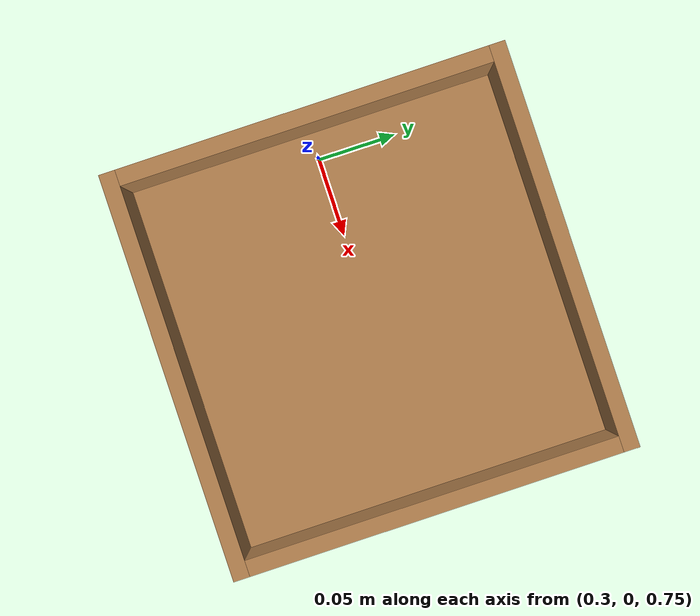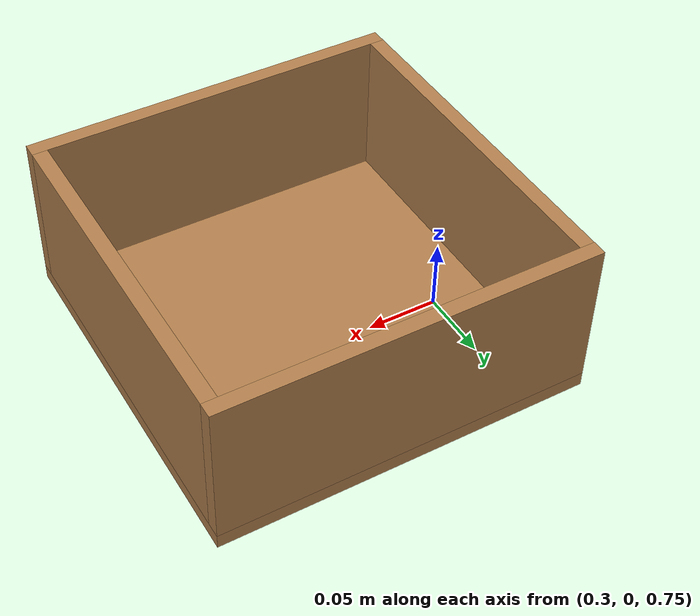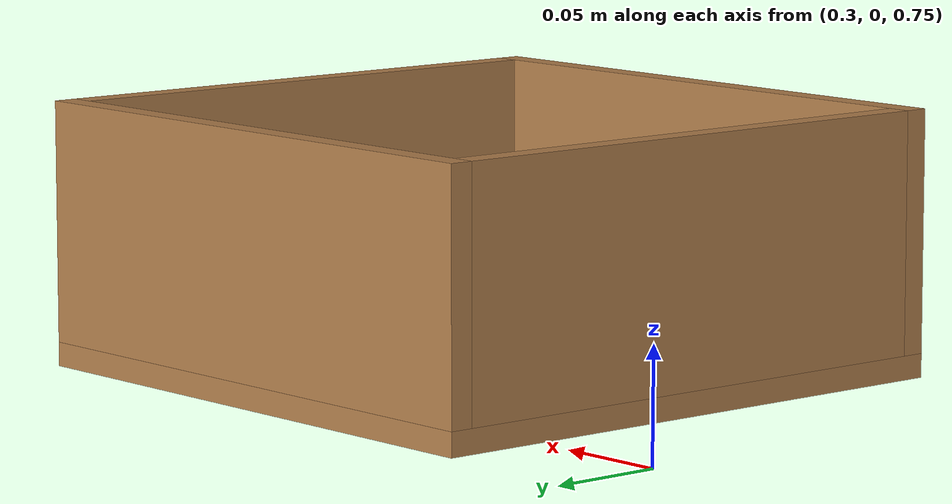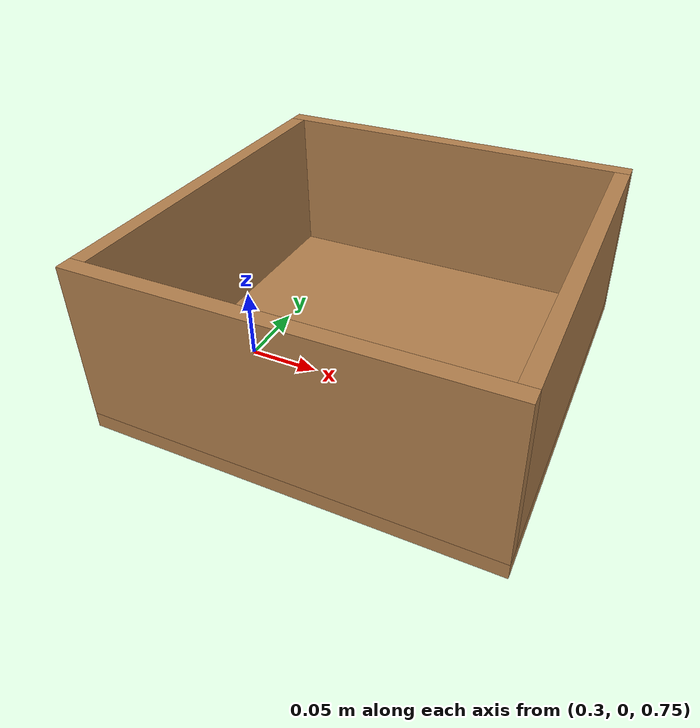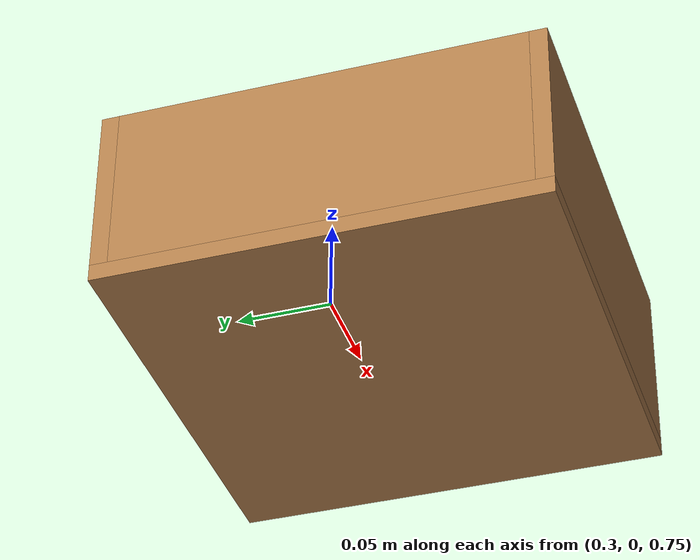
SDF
<?xml version='1.0'?>
<sdf version='1.6'>
	<model name='box_grains'>
	<pose>0.4 0 0.775 0 0 0 </pose>
	<static>true</static>

	<link name='box_grains_0'>
		<pose>0 0 0.005 0 0 0 </pose>
		<collision name='box_grains_0_coliision'>
		<geometry>
			<box>
				<size>0.25 0.25 0.01</size>
			</box>
		</geometry>
		<surface>
			<friction>
				<ode>
					<mu>2000</mu>
					<mu2>2000</mu2>
				</ode>
			</friction>
		</surface>
		</collision>

		<visual name='box_grains_0_visual'>
		<geometry>
			<box>
				<size>0.25 0.25 0.01</size>
			</box>
		</geometry>
		<material>
			<script>
				<uri>file://media/materials/scripts/gazebo.material</uri>
				<name>Gazebo/WoodFloor</name>
			</script>
		</material>
		</visual>	</link>

	<link name='box_grains_1'>
		<pose>-0.12 0 0.06 0 0 0 </pose>
		<collision name='box_grains_1_coliision'>
		<geometry>
			<box>
				<size>0.01 0.23 0.1</size>
			</box>
		</geometry>
		<surface>
			<friction>
				<ode>
					<mu>2000</mu>
					<mu2>2000</mu2>
				</ode>
			</friction>
		</surface>
		</collision>

		<visual name='box_grains_1_visual'>
		<geometry>
			<box>
				<size>0.01 0.23 0.1</size>
			</box>
		</geometry>
		<material>
			<script>
				<uri>file://media/materials/scripts/gazebo.material</uri>
				<name>Gazebo/WoodFloor</name>
			</script>
		</material>
		</visual>	</link>

	<link name='box_grains_2'>
		<pose>0.12 0 0.06 0 0 0 </pose>
		<collision name='box_grains_2_coliision'>
		<geometry>
			<box>
				<size>0.01 0.23 0.1</size>
			</box>
		</geometry>
		<surface>
			<friction>
				<ode>
					<mu>2000</mu>
					<mu2>2000</mu2>
				</ode>
			</friction>
		</surface>
		</collision>

		<visual name='box_grains_2_visual'>
		<geometry>
			<box>
				<size>0.01 0.23 0.1</size>
			</box>
		</geometry>
		<material>
			<script>
				<uri>file://media/materials/scripts/gazebo.material</uri>
				<name>Gazebo/WoodFloor</name>
			</script>
		</material>
		</visual>	</link>

	<link name='box_grains_3'>
		<pose>0 -0.12 0.06 0 0 0 </pose>
		<collision name='box_grains_3_coliision'>
		<geometry>
			<box>
				<size>0.25 0.01 0.1</size>
			</box>
		</geometry>
		<surface>
			<friction>
				<ode>
					<mu>2000</mu>
					<mu2>2000</mu2>
				</ode>
			</friction>
		</surface>
		</collision>

		<visual name='box_grains_3_visual'>
		<geometry>
			<box>
				<size>0.25 0.01 0.1</size>
			</box>
		</geometry>
		<material>
			<script>
				<uri>file://media/materials/scripts/gazebo.material</uri>
				<name>Gazebo/WoodFloor</name>
			</script>
		</material>
		</visual>	</link>

	<link name='box_grains_4'>
		<pose>0 0.12 0.06 0 0 0 </pose>
		<collision name='box_grains_4_coliision'>
		<geometry>
			<box>
				<size>0.25 0.01 0.1</size>
			</box>
		</geometry>
		<surface>
			<friction>
				<ode>
					<mu>2000</mu>
					<mu2>2000</mu2>
				</ode>
			</friction>
		</surface>
		</collision>

		<visual name='box_grains_4_visual'>
		<geometry>
			<box>
				<size>0.25 0.01 0.1</size>
			</box>
		</geometry>
		<material>
			<script>
				<uri>file://media/materials/scripts/gazebo.material</uri>
				<name>Gazebo/WoodFloor</name>
			</script>
		</material>
		</visual>	</link>

	</model>
</sdf>
